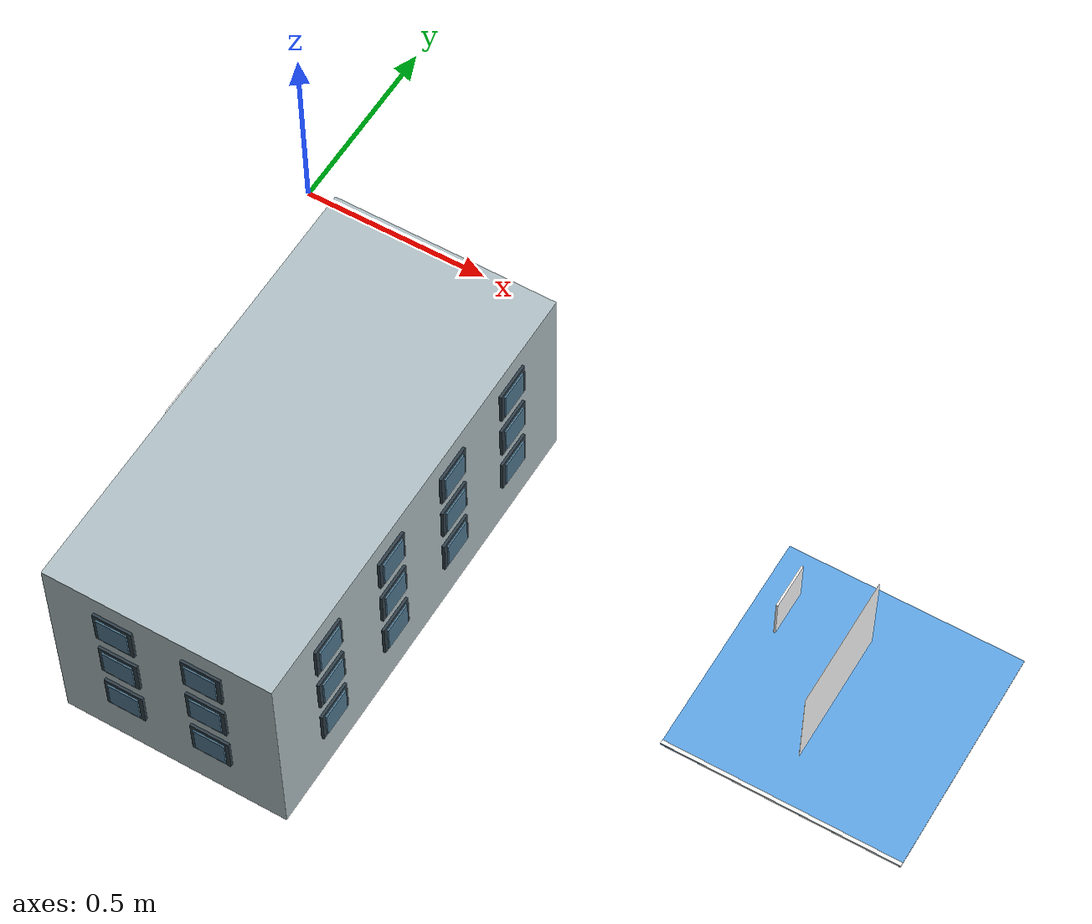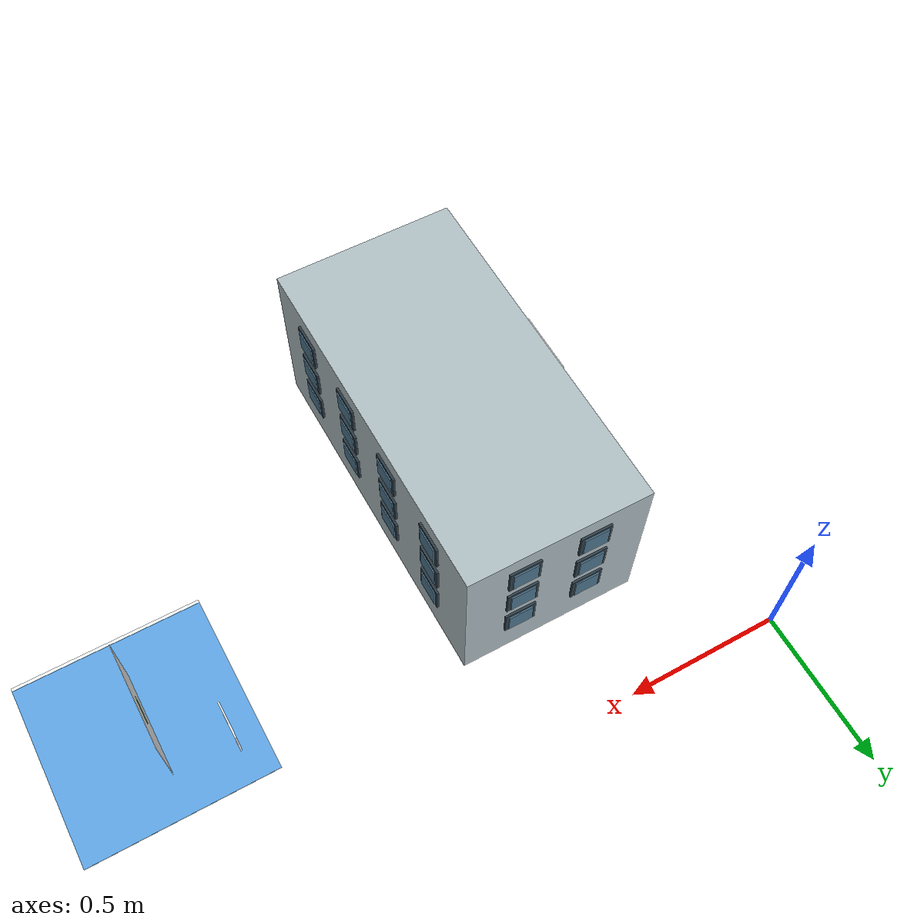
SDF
<sdf version="1.6">
 <world name="sq_community_4p2">
  <include><uri>model://sun</uri></include>
  <model name="sq4_car_bay_3">
   <static>true</static>
   <pose>1.8000 -0.6000 0.0000 0 0 0.00000</pose>
   <link name="surface">
    <visual name="surface_vis">
     <pose>0.0000 0.0000 0.0020 0 0 0.00000</pose>
     <geometry><box><size>0.6000 0.6000 0.0040</size></box></geometry>
     <material>
      <ambient>0.3700 0.6500 0.9000 1.0000</ambient>
      <diffuse>0.3700 0.6500 0.9000 1.0000</diffuse>
     </material>
    </visual>
   </link>
  </model>
  <model name="sq4_car_bay_line_3">
   <static>true</static>
   <pose>1.8000 -0.8950 0.0000 0 0 0.00000</pose>
   <link name="surface">
    <visual name="surface_vis">
     <pose>0.0000 0.0000 0.0030 0 0 0.00000</pose>
     <geometry><box><size>0.6000 0.0100 0.0060</size></box></geometry>
     <material>
      <ambient>0.9600 0.9700 0.9700 1.0000</ambient>
      <diffuse>0.9600 0.9700 0.9700 1.0000</diffuse>
     </material>
    </visual>
   </link>
  </model>
  <model name="sq4_building_C">
   <static>true</static>
   <pose>0.6000 -0.9000 0.0000 0 0 0.00000</pose>
   <link name="structure">
    <visual name="structure_vis">
     <pose>0.0000 0.0000 0.2750 0 0 0.00000</pose>
     <geometry><box><size>0.5800 1.1600 0.5500</size></box></geometry>
     <material>
      <ambient>0.6900 0.7500 0.7700 1.0000</ambient>
      <diffuse>0.6900 0.7500 0.7700 1.0000</diffuse>
     </material>
    </visual>
    <collision name="structure_col">
     <pose>0.0000 0.0000 0.2750 0 0 0.00000</pose>
     <geometry><box><size>0.5800 1.1600 0.5500</size></box></geometry>
    </collision>
   </link>
   <link name="nameplate">
    <visual name="nameplate_vis">
     <pose>-0.2960 0.0000 0.5150 0 0 0.00000</pose>
     <geometry><box><size>0.0050 0.2000 0.0450</size></box></geometry>
     <material>
      <script>
       <uri>model://sq_textures/materials/scripts</uri>
       <uri>model://sq_textures/materials/textures</uri>
       <name>SQ_bldg_C</name>
      </script>
      <ambient>1 1 1 1</ambient>
      <diffuse>1 1 1 1</diffuse>
     </material>
    </visual>
   </link>
   <link name="entry_door">
    <visual name="entry_door_vis">
     <pose>-0.2960 0.0000 0.0630 0 0 0.00000</pose>
     <geometry><box><size>0.0060 0.1150 0.1050</size></box></geometry>
     <material>
      <ambient>0.1600 0.2300 0.2800 1.0000</ambient>
      <diffuse>0.1600 0.2300 0.2800 1.0000</diffuse>
     </material>
    </visual>
   </link>
   <link name="window_f1_c1_frame">
    <visual name="window_f1_c1_frame_vis">
     <pose>-0.2950 -0.3783 0.1800 0 0 0.00000</pose>
     <geometry><box><size>0.0070 0.1000 0.0930</size></box></geometry>
     <material>
      <ambient>0.1800 0.2400 0.2800 1.0000</ambient>
      <diffuse>0.1800 0.2400 0.2800 1.0000</diffuse>
     </material>
    </visual>
   </link>
   <link name="window_f1_c1_glass">
    <visual name="window_f1_c1_glass_vis">
     <pose>-0.2990 -0.3783 0.1800 0 0 0.00000</pose>
     <geometry><box><size>0.0070 0.0780 0.0720</size></box></geometry>
     <material>
      <ambient>0.3100 0.4700 0.5700 1.0000</ambient>
      <diffuse>0.3100 0.4700 0.5700 1.0000</diffuse>
     </material>
    </visual>
   </link>
   <link name="window_f1_c2_frame">
    <visual name="window_f1_c2_frame_vis">
     <pose>-0.2950 -0.1261 0.1800 0 0 0.00000</pose>
     <geometry><box><size>0.0070 0.1000 0.0930</size></box></geometry>
     <material>
      <ambient>0.1800 0.2400 0.2800 1.0000</ambient>
      <diffuse>0.1800 0.2400 0.2800 1.0000</diffuse>
     </material>
    </visual>
   </link>
   <link name="window_f1_c2_glass">
    <visual name="window_f1_c2_glass_vis">
     <pose>-0.2990 -0.1261 0.1800 0 0 0.00000</pose>
     <geometry><box><size>0.0070 0.0780 0.0720</size></box></geometry>
     <material>
      <ambient>0.3100 0.4700 0.5700 1.0000</ambient>
      <diffuse>0.3100 0.4700 0.5700 1.0000</diffuse>
     </material>
    </visual>
   </link>
   <link name="window_f1_c3_frame">
    <visual name="window_f1_c3_frame_vis">
     <pose>-0.2950 0.1261 0.1800 0 0 0.00000</pose>
     <geometry><box><size>0.0070 0.1000 0.0930</size></box></geometry>
     <material>
      <ambient>0.1800 0.2400 0.2800 1.0000</ambient>
      <diffuse>0.1800 0.2400 0.2800 1.0000</diffuse>
     </material>
    </visual>
   </link>
   <link name="window_f1_c3_glass">
    <visual name="window_f1_c3_glass_vis">
     <pose>-0.2990 0.1261 0.1800 0 0 0.00000</pose>
     <geometry><box><size>0.0070 0.0780 0.0720</size></box></geometry>
     <material>
      <ambient>0.3100 0.4700 0.5700 1.0000</ambient>
      <diffuse>0.3100 0.4700 0.5700 1.0000</diffuse>
     </material>
    </visual>
   </link>
   <link name="window_f1_c4_frame">
    <visual name="window_f1_c4_frame_vis">
     <pose>-0.2950 0.3783 0.1800 0 0 0.00000</pose>
     <geometry><box><size>0.0070 0.1000 0.0930</size></box></geometry>
     <material>
      <ambient>0.1800 0.2400 0.2800 1.0000</ambient>
      <diffuse>0.1800 0.2400 0.2800 1.0000</diffuse>
     </material>
    </visual>
   </link>
   <link name="window_f1_c4_glass">
    <visual name="window_f1_c4_glass_vis">
     <pose>-0.2990 0.3783 0.1800 0 0 0.00000</pose>
     <geometry><box><size>0.0070 0.0780 0.0720</size></box></geometry>
     <material>
      <ambient>0.3100 0.4700 0.5700 1.0000</ambient>
      <diffuse>0.3100 0.4700 0.5700 1.0000</diffuse>
     </material>
    </visual>
   </link>
   <link name="window_f2_c1_frame">
    <visual name="window_f2_c1_frame_vis">
     <pose>-0.2950 -0.3783 0.3150 0 0 0.00000</pose>
     <geometry><box><size>0.0070 0.1000 0.0930</size></box></geometry>
     <material>
      <ambient>0.1800 0.2400 0.2800 1.0000</ambient>
      <diffuse>0.1800 0.2400 0.2800 1.0000</diffuse>
     </material>
    </visual>
   </link>
   <link name="window_f2_c1_glass">
    <visual name="window_f2_c1_glass_vis">
     <pose>-0.2990 -0.3783 0.3150 0 0 0.00000</pose>
     <geometry><box><size>0.0070 0.0780 0.0720</size></box></geometry>
     <material>
      <ambient>0.3100 0.4700 0.5700 1.0000</ambient>
      <diffuse>0.3100 0.4700 0.5700 1.0000</diffuse>
     </material>
    </visual>
   </link>
   <link name="window_f2_c2_frame">
    <visual name="window_f2_c2_frame_vis">
     <pose>-0.2950 -0.1261 0.3150 0 0 0.00000</pose>
     <geometry><box><size>0.0070 0.1000 0.0930</size></box></geometry>
     <material>
      <ambient>0.1800 0.2400 0.2800 1.0000</ambient>
      <diffuse>0.1800 0.2400 0.2800 1.0000</diffuse>
     </material>
    </visual>
   </link>
   <link name="window_f2_c2_glass">
    <visual name="window_f2_c2_glass_vis">
     <pose>-0.2990 -0.1261 0.3150 0 0 0.00000</pose>
     <geometry><box><size>0.0070 0.0780 0.0720</size></box></geometry>
     <material>
      <script>
       <uri>model://sq_textures/materials/scripts</uri>
       <uri>model://sq_textures/materials/textures</uri>
       <name>SQ_win_fire</name>
      </script>
      <ambient>1 1 1 1</ambient>
      <diffuse>1 1 1 1</diffuse>
     </material>
    </visual>
   </link>
   <link name="window_f2_c3_frame">
    <visual name="window_f2_c3_frame_vis">
     <pose>-0.2950 0.1261 0.3150 0 0 0.00000</pose>
     <geometry><box><size>0.0070 0.1000 0.0930</size></box></geometry>
     <material>
      <ambient>0.1800 0.2400 0.2800 1.0000</ambient>
      <diffuse>0.1800 0.2400 0.2800 1.0000</diffuse>
     </material>
    </visual>
   </link>
   <link name="window_f2_c3_glass">
    <visual name="window_f2_c3_glass_vis">
     <pose>-0.2990 0.1261 0.3150 0 0 0.00000</pose>
     <geometry><box><size>0.0070 0.0780 0.0720</size></box></geometry>
     <material>
      <ambient>0.3100 0.4700 0.5700 1.0000</ambient>
      <diffuse>0.3100 0.4700 0.5700 1.0000</diffuse>
     </material>
    </visual>
   </link>
   <link name="window_f2_c4_frame">
    <visual name="window_f2_c4_frame_vis">
     <pose>-0.2950 0.3783 0.3150 0 0 0.00000</pose>
     <geometry><box><size>0.0070 0.1000 0.0930</size></box></geometry>
     <material>
      <ambient>0.1800 0.2400 0.2800 1.0000</ambient>
      <diffuse>0.1800 0.2400 0.2800 1.0000</diffuse>
     </material>
    </visual>
   </link>
   <link name="window_f2_c4_glass">
    <visual name="window_f2_c4_glass_vis">
     <pose>-0.2990 0.3783 0.3150 0 0 0.00000</pose>
     <geometry><box><size>0.0070 0.0780 0.0720</size></box></geometry>
     <material>
      <ambient>0.3100 0.4700 0.5700 1.0000</ambient>
      <diffuse>0.3100 0.4700 0.5700 1.0000</diffuse>
     </material>
    </visual>
   </link>
   <link name="window_f3_c1_frame">
    <visual name="window_f3_c1_frame_vis">
     <pose>-0.2950 -0.3783 0.4500 0 0 0.00000</pose>
     <geometry><box><size>0.0070 0.1000 0.0930</size></box></geometry>
     <material>
      <ambient>0.1800 0.2400 0.2800 1.0000</ambient>
      <diffuse>0.1800 0.2400 0.2800 1.0000</diffuse>
     </material>
    </visual>
   </link>
   <link name="window_f3_c1_glass">
    <visual name="window_f3_c1_glass_vis">
     <pose>-0.2990 -0.3783 0.4500 0 0 0.00000</pose>
     <geometry><box><size>0.0070 0.0780 0.0720</size></box></geometry>
     <material>
      <ambient>0.3100 0.4700 0.5700 1.0000</ambient>
      <diffuse>0.3100 0.4700 0.5700 1.0000</diffuse>
     </material>
    </visual>
   </link>
   <link name="window_f3_c2_frame">
    <visual name="window_f3_c2_frame_vis">
     <pose>-0.2950 -0.1261 0.4500 0 0 0.00000</pose>
     <geometry><box><size>0.0070 0.1000 0.0930</size></box></geometry>
     <material>
      <ambient>0.1800 0.2400 0.2800 1.0000</ambient>
      <diffuse>0.1800 0.2400 0.2800 1.0000</diffuse>
     </material>
    </visual>
   </link>
   <link name="window_f3_c2_glass">
    <visual name="window_f3_c2_glass_vis">
     <pose>-0.2990 -0.1261 0.4500 0 0 0.00000</pose>
     <geometry><box><size>0.0070 0.0780 0.0720</size></box></geometry>
     <material>
      <ambient>0.3100 0.4700 0.5700 1.0000</ambient>
      <diffuse>0.3100 0.4700 0.5700 1.0000</diffuse>
     </material>
    </visual>
   </link>
   <link name="window_f3_c3_frame">
    <visual name="window_f3_c3_frame_vis">
     <pose>-0.2950 0.1261 0.4500 0 0 0.00000</pose>
     <geometry><box><size>0.0070 0.1000 0.0930</size></box></geometry>
     <material>
      <ambient>0.1800 0.2400 0.2800 1.0000</ambient>
      <diffuse>0.1800 0.2400 0.2800 1.0000</diffuse>
     </material>
    </visual>
   </link>
   <link name="window_f3_c3_glass">
    <visual name="window_f3_c3_glass_vis">
     <pose>-0.2990 0.1261 0.4500 0 0 0.00000</pose>
     <geometry><box><size>0.0070 0.0780 0.0720</size></box></geometry>
     <material>
      <ambient>0.3100 0.4700 0.5700 1.0000</ambient>
      <diffuse>0.3100 0.4700 0.5700 1.0000</diffuse>
     </material>
    </visual>
   </link>
   <link name="window_f3_c4_frame">
    <visual name="window_f3_c4_frame_vis">
     <pose>-0.2950 0.3783 0.4500 0 0 0.00000</pose>
     <geometry><box><size>0.0070 0.1000 0.0930</size></box></geometry>
     <material>
      <ambient>0.1800 0.2400 0.2800 1.0000</ambient>
      <diffuse>0.1800 0.2400 0.2800 1.0000</diffuse>
     </material>
    </visual>
   </link>
   <link name="window_f3_c4_glass">
    <visual name="window_f3_c4_glass_vis">
     <pose>-0.2990 0.3783 0.4500 0 0 0.00000</pose>
     <geometry><box><size>0.0070 0.0780 0.0720</size></box></geometry>
     <material>
      <script>
       <uri>model://sq_textures/materials/scripts</uri>
       <uri>model://sq_textures/materials/textures</uri>
       <name>SQ_win_fire</name>
      </script>
      <ambient>1 1 1 1</ambient>
      <diffuse>1 1 1 1</diffuse>
     </material>
    </visual>
   </link>
   <link name="side_north_f1_c1_frame">
    <visual name="side_north_f1_c1_frame_vis">
     <pose>-0.1115 0.5850 0.1800 0 0 0.00000</pose>
     <geometry><box><size>0.1000 0.0070 0.0930</size></box></geometry>
     <material>
      <ambient>0.1800 0.2400 0.2800 1.0000</ambient>
      <diffuse>0.1800 0.2400 0.2800 1.0000</diffuse>
     </material>
    </visual>
   </link>
   <link name="side_north_f1_c1_glass">
    <visual name="side_north_f1_c1_glass_vis">
     <pose>-0.1115 0.5890 0.1800 0 0 0.00000</pose>
     <geometry><box><size>0.0780 0.0070 0.0720</size></box></geometry>
     <material>
      <ambient>0.3100 0.4700 0.5700 1.0000</ambient>
      <diffuse>0.3100 0.4700 0.5700 1.0000</diffuse>
     </material>
    </visual>
   </link>
   <link name="side_north_f1_c2_frame">
    <visual name="side_north_f1_c2_frame_vis">
     <pose>0.1115 0.5850 0.1800 0 0 0.00000</pose>
     <geometry><box><size>0.1000 0.0070 0.0930</size></box></geometry>
     <material>
      <ambient>0.1800 0.2400 0.2800 1.0000</ambient>
      <diffuse>0.1800 0.2400 0.2800 1.0000</diffuse>
     </material>
    </visual>
   </link>
   <link name="side_north_f1_c2_glass">
    <visual name="side_north_f1_c2_glass_vis">
     <pose>0.1115 0.5890 0.1800 0 0 0.00000</pose>
     <geometry><box><size>0.0780 0.0070 0.0720</size></box></geometry>
     <material>
      <ambient>0.3100 0.4700 0.5700 1.0000</ambient>
      <diffuse>0.3100 0.4700 0.5700 1.0000</diffuse>
     </material>
    </visual>
   </link>
   <link name="side_north_f2_c1_frame">
    <visual name="side_north_f2_c1_frame_vis">
     <pose>-0.1115 0.5850 0.3150 0 0 0.00000</pose>
     <geometry><box><size>0.1000 0.0070 0.0930</size></box></geometry>
     <material>
      <ambient>0.1800 0.2400 0.2800 1.0000</ambient>
      <diffuse>0.1800 0.2400 0.2800 1.0000</diffuse>
     </material>
    </visual>
   </link>
   <link name="side_north_f2_c1_glass">
    <visual name="side_north_f2_c1_glass_vis">
     <pose>-0.1115 0.5890 0.3150 0 0 0.00000</pose>
     <geometry><box><size>0.0780 0.0070 0.0720</size></box></geometry>
     <material>
      <ambient>0.3100 0.4700 0.5700 1.0000</ambient>
      <diffuse>0.3100 0.4700 0.5700 1.0000</diffuse>
     </material>
    </visual>
   </link>
   <link name="side_north_f2_c2_frame">
    <visual name="side_north_f2_c2_frame_vis">
     <pose>0.1115 0.5850 0.3150 0 0 0.00000</pose>
     <geometry><box><size>0.1000 0.0070 0.0930</size></box></geometry>
     <material>
      <ambient>0.1800 0.2400 0.2800 1.0000</ambient>
      <diffuse>0.1800 0.2400 0.2800 1.0000</diffuse>
     </material>
    </visual>
   </link>
   <link name="side_north_f2_c2_glass">
    <visual name="side_north_f2_c2_glass_vis">
     <pose>0.1115 0.5890 0.3150 0 0 0.00000</pose>
     <geometry><box><size>0.0780 0.0070 0.0720</size></box></geometry>
     <material>
      <ambient>0.3100 0.4700 0.5700 1.0000</ambient>
      <diffuse>0.3100 0.4700 0.5700 1.0000</diffuse>
     </material>
    </visual>
   </link>
   <link name="side_north_f3_c1_frame">
    <visual name="side_north_f3_c1_frame_vis">
     <pose>-0.1115 0.5850 0.4500 0 0 0.00000</pose>
     <geometry><box><size>0.1000 0.0070 0.0930</size></box></geometry>
     <material>
      <ambient>0.1800 0.2400 0.2800 1.0000</ambient>
      <diffuse>0.1800 0.2400 0.2800 1.0000</diffuse>
     </material>
    </visual>
   </link>
   <link name="side_north_f3_c1_glass">
    <visual name="side_north_f3_c1_glass_vis">
     <pose>-0.1115 0.5890 0.4500 0 0 0.00000</pose>
     <geometry><box><size>0.0780 0.0070 0.0720</size></box></geometry>
     <material>
      <ambient>0.3100 0.4700 0.5700 1.0000</ambient>
      <diffuse>0.3100 0.4700 0.5700 1.0000</diffuse>
     </material>
    </visual>
   </link>
   <link name="side_north_f3_c2_frame">
    <visual name="side_north_f3_c2_frame_vis">
     <pose>0.1115 0.5850 0.4500 0 0 0.00000</pose>
     <geometry><box><size>0.1000 0.0070 0.0930</size></box></geometry>
     <material>
      <ambient>0.1800 0.2400 0.2800 1.0000</ambient>
      <diffuse>0.1800 0.2400 0.2800 1.0000</diffuse>
     </material>
    </visual>
   </link>
   <link name="side_north_f3_c2_glass">
    <visual name="side_north_f3_c2_glass_vis">
     <pose>0.1115 0.5890 0.4500 0 0 0.00000</pose>
     <geometry><box><size>0.0780 0.0070 0.0720</size></box></geometry>
     <material>
      <ambient>0.3100 0.4700 0.5700 1.0000</ambient>
      <diffuse>0.3100 0.4700 0.5700 1.0000</diffuse>
     </material>
    </visual>
   </link>
   <link name="side_south_f1_c1_frame">
    <visual name="side_south_f1_c1_frame_vis">
     <pose>-0.1115 -0.5850 0.1800 0 0 0.00000</pose>
     <geometry><box><size>0.1000 0.0070 0.0930</size></box></geometry>
     <material>
      <ambient>0.1800 0.2400 0.2800 1.0000</ambient>
      <diffuse>0.1800 0.2400 0.2800 1.0000</diffuse>
     </material>
    </visual>
   </link>
   <link name="side_south_f1_c1_glass">
    <visual name="side_south_f1_c1_glass_vis">
     <pose>-0.1115 -0.5890 0.1800 0 0 0.00000</pose>
     <geometry><box><size>0.0780 0.0070 0.0720</size></box></geometry>
     <material>
      <ambient>0.3100 0.4700 0.5700 1.0000</ambient>
      <diffuse>0.3100 0.4700 0.5700 1.0000</diffuse>
     </material>
    </visual>
   </link>
   <link name="side_south_f1_c2_frame">
    <visual name="side_south_f1_c2_frame_vis">
     <pose>0.1115 -0.5850 0.1800 0 0 0.00000</pose>
     <geometry><box><size>0.1000 0.0070 0.0930</size></box></geometry>
     <material>
      <ambient>0.1800 0.2400 0.2800 1.0000</ambient>
      <diffuse>0.1800 0.2400 0.2800 1.0000</diffuse>
     </material>
    </visual>
   </link>
   <link name="side_south_f1_c2_glass">
    <visual name="side_south_f1_c2_glass_vis">
     <pose>0.1115 -0.5890 0.1800 0 0 0.00000</pose>
     <geometry><box><size>0.0780 0.0070 0.0720</size></box></geometry>
     <material>
      <ambient>0.3100 0.4700 0.5700 1.0000</ambient>
      <diffuse>0.3100 0.4700 0.5700 1.0000</diffuse>
     </material>
    </visual>
   </link>
   <link name="side_south_f2_c1_frame">
    <visual name="side_south_f2_c1_frame_vis">
     <pose>-0.1115 -0.5850 0.3150 0 0 0.00000</pose>
     <geometry><box><size>0.1000 0.0070 0.0930</size></box></geometry>
     <material>
      <ambient>0.1800 0.2400 0.2800 1.0000</ambient>
      <diffuse>0.1800 0.2400 0.2800 1.0000</diffuse>
     </material>
    </visual>
   </link>
   <link name="side_south_f2_c1_glass">
    <visual name="side_south_f2_c1_glass_vis">
     <pose>-0.1115 -0.5890 0.3150 0 0 0.00000</pose>
     <geometry><box><size>0.0780 0.0070 0.0720</size></box></geometry>
     <material>
      <ambient>0.3100 0.4700 0.5700 1.0000</ambient>
      <diffuse>0.3100 0.4700 0.5700 1.0000</diffuse>
     </material>
    </visual>
   </link>
   <link name="side_south_f2_c2_frame">
    <visual name="side_south_f2_c2_frame_vis">
     <pose>0.1115 -0.5850 0.3150 0 0 0.00000</pose>
     <geometry><box><size>0.1000 0.0070 0.0930</size></box></geometry>
     <material>
      <ambient>0.1800 0.2400 0.2800 1.0000</ambient>
      <diffuse>0.1800 0.2400 0.2800 1.0000</diffuse>
     </material>
    </visual>
   </link>
   <link name="side_south_f2_c2_glass">
    <visual name="side_south_f2_c2_glass_vis">
     <pose>0.1115 -0.5890 0.3150 0 0 0.00000</pose>
     <geometry><box><size>0.0780 0.0070 0.0720</size></box></geometry>
     <material>
      <ambient>0.3100 0.4700 0.5700 1.0000</ambient>
      <diffuse>0.3100 0.4700 0.5700 1.0000</diffuse>
     </material>
    </visual>
   </link>
   <link name="side_south_f3_c1_frame">
    <visual name="side_south_f3_c1_frame_vis">
     <pose>-0.1115 -0.5850 0.4500 0 0 0.00000</pose>
     <geometry><box><size>0.1000 0.0070 0.0930</size></box></geometry>
     <material>
      <ambient>0.1800 0.2400 0.2800 1.0000</ambient>
      <diffuse>0.1800 0.2400 0.2800 1.0000</diffuse>
     </material>
    </visual>
   </link>
   <link name="side_south_f3_c1_glass">
    <visual name="side_south_f3_c1_glass_vis">
     <pose>-0.1115 -0.5890 0.4500 0 0 0.00000</pose>
     <geometry><box><size>0.0780 0.0070 0.0720</size></box></geometry>
     <material>
      <ambient>0.3100 0.4700 0.5700 1.0000</ambient>
      <diffuse>0.3100 0.4700 0.5700 1.0000</diffuse>
     </material>
    </visual>
   </link>
   <link name="side_south_f3_c2_frame">
    <visual name="side_south_f3_c2_frame_vis">
     <pose>0.1115 -0.5850 0.4500 0 0 0.00000</pose>
     <geometry><box><size>0.1000 0.0070 0.0930</size></box></geometry>
     <material>
      <ambient>0.1800 0.2400 0.2800 1.0000</ambient>
      <diffuse>0.1800 0.2400 0.2800 1.0000</diffuse>
     </material>
    </visual>
   </link>
   <link name="side_south_f3_c2_glass">
    <visual name="side_south_f3_c2_glass_vis">
     <pose>0.1115 -0.5890 0.4500 0 0 0.00000</pose>
     <geometry><box><size>0.0780 0.0070 0.0720</size></box></geometry>
     <material>
      <ambient>0.3100 0.4700 0.5700 1.0000</ambient>
      <diffuse>0.3100 0.4700 0.5700 1.0000</diffuse>
     </material>
    </visual>
   </link>
   <link name="rear_f1_c1_frame">
    <visual name="rear_f1_c1_frame_vis">
     <pose>0.2950 -0.3783 0.1800 0 0 0.00000</pose>
     <geometry><box><size>0.0070 0.1000 0.0930</size></box></geometry>
     <material>
      <ambient>0.1800 0.2400 0.2800 1.0000</ambient>
      <diffuse>0.1800 0.2400 0.2800 1.0000</diffuse>
     </material>
    </visual>
   </link>
   <link name="rear_f1_c1_glass">
    <visual name="rear_f1_c1_glass_vis">
     <pose>0.2990 -0.3783 0.1800 0 0 0.00000</pose>
     <geometry><box><size>0.0070 0.0780 0.0720</size></box></geometry>
     <material>
      <ambient>0.3100 0.4700 0.5700 1.0000</ambient>
      <diffuse>0.3100 0.4700 0.5700 1.0000</diffuse>
     </material>
    </visual>
   </link>
   <link name="rear_f1_c2_frame">
    <visual name="rear_f1_c2_frame_vis">
     <pose>0.2950 -0.1261 0.1800 0 0 0.00000</pose>
     <geometry><box><size>0.0070 0.1000 0.0930</size></box></geometry>
     <material>
      <ambient>0.1800 0.2400 0.2800 1.0000</ambient>
      <diffuse>0.1800 0.2400 0.2800 1.0000</diffuse>
     </material>
    </visual>
   </link>
   <link name="rear_f1_c2_glass">
    <visual name="rear_f1_c2_glass_vis">
     <pose>0.2990 -0.1261 0.1800 0 0 0.00000</pose>
     <geometry><box><size>0.0070 0.0780 0.0720</size></box></geometry>
     <material>
      <ambient>0.3100 0.4700 0.5700 1.0000</ambient>
      <diffuse>0.3100 0.4700 0.5700 1.0000</diffuse>
     </material>
    </visual>
   </link>
   <link name="rear_f1_c3_frame">
    <visual name="rear_f1_c3_frame_vis">
     <pose>0.2950 0.1261 0.1800 0 0 0.00000</pose>
     <geometry><box><size>0.0070 0.1000 0.0930</size></box></geometry>
     <material>
      <ambient>0.1800 0.2400 0.2800 1.0000</ambient>
      <diffuse>0.1800 0.2400 0.2800 1.0000</diffuse>
     </material>
    </visual>
   </link>
   <link name="rear_f1_c3_glass">
    <visual name="rear_f1_c3_glass_vis">
     <pose>0.2990 0.1261 0.1800 0 0 0.00000</pose>
     <geometry><box><size>0.0070 0.0780 0.0720</size></box></geometry>
     <material>
      <ambient>0.3100 0.4700 0.5700 1.0000</ambient>
      <diffuse>0.3100 0.4700 0.5700 1.0000</diffuse>
     </material>
    </visual>
   </link>
   <link name="rear_f1_c4_frame">
    <visual name="rear_f1_c4_frame_vis">
     <pose>0.2950 0.3783 0.1800 0 0 0.00000</pose>
     <geometry><box><size>0.0070 0.1000 0.0930</size></box></geometry>
     <material>
      <ambient>0.1800 0.2400 0.2800 1.0000</ambient>
      <diffuse>0.1800 0.2400 0.2800 1.0000</diffuse>
     </material>
    </visual>
   </link>
   <link name="rear_f1_c4_glass">
    <visual name="rear_f1_c4_glass_vis">
     <pose>0.2990 0.3783 0.1800 0 0 0.00000</pose>
     <geometry><box><size>0.0070 0.0780 0.0720</size></box></geometry>
     <material>
      <ambient>0.3100 0.4700 0.5700 1.0000</ambient>
      <diffuse>0.3100 0.4700 0.5700 1.0000</diffuse>
     </material>
    </visual>
   </link>
   <link name="rear_f2_c1_frame">
    <visual name="rear_f2_c1_frame_vis">
     <pose>0.2950 -0.3783 0.3150 0 0 0.00000</pose>
     <geometry><box><size>0.0070 0.1000 0.0930</size></box></geometry>
     <material>
      <ambient>0.1800 0.2400 0.2800 1.0000</ambient>
      <diffuse>0.1800 0.2400 0.2800 1.0000</diffuse>
     </material>
    </visual>
   </link>
   <link name="rear_f2_c1_glass">
    <visual name="rear_f2_c1_glass_vis">
     <pose>0.2990 -0.3783 0.3150 0 0 0.00000</pose>
     <geometry><box><size>0.0070 0.0780 0.0720</size></box></geometry>
     <material>
      <ambient>0.3100 0.4700 0.5700 1.0000</ambient>
      <diffuse>0.3100 0.4700 0.5700 1.0000</diffuse>
     </material>
    </visual>
   </link>
   <link name="rear_f2_c2_frame">
    <visual name="rear_f2_c2_frame_vis">
     <pose>0.2950 -0.1261 0.3150 0 0 0.00000</pose>
     <geometry><box><size>0.0070 0.1000 0.0930</size></box></geometry>
     <material>
      <ambient>0.1800 0.2400 0.2800 1.0000</ambient>
      <diffuse>0.1800 0.2400 0.2800 1.0000</diffuse>
     </material>
    </visual>
   </link>
   <link name="rear_f2_c2_glass">
    <visual name="rear_f2_c2_glass_vis">
     <pose>0.2990 -0.1261 0.3150 0 0 0.00000</pose>
     <geometry><box><size>0.0070 0.0780 0.0720</size></box></geometry>
     <material>
      <ambient>0.3100 0.4700 0.5700 1.0000</ambient>
      <diffuse>0.3100 0.4700 0.5700 1.0000</diffuse>
     </material>
    </visual>
   </link>
   <link name="rear_f2_c3_frame">
    <visual name="rear_f2_c3_frame_vis">
     <pose>0.2950 0.1261 0.3150 0 0 0.00000</pose>
     <geometry><box><size>0.0070 0.1000 0.0930</size></box></geometry>
     <material>
      <ambient>0.1800 0.2400 0.2800 1.0000</ambient>
      <diffuse>0.1800 0.2400 0.2800 1.0000</diffuse>
     </material>
    </visual>
   </link>
   <link name="rear_f2_c3_glass">
    <visual name="rear_f2_c3_glass_vis">
     <pose>0.2990 0.1261 0.3150 0 0 0.00000</pose>
     <geometry><box><size>0.0070 0.0780 0.0720</size></box></geometry>
     <material>
      <ambient>0.3100 0.4700 0.5700 1.0000</ambient>
      <diffuse>0.3100 0.4700 0.5700 1.0000</diffuse>
     </material>
    </visual>
   </link>
   <link name="rear_f2_c4_frame">
    <visual name="rear_f2_c4_frame_vis">
     <pose>0.2950 0.3783 0.3150 0 0 0.00000</pose>
     <geometry><box><size>0.0070 0.1000 0.0930</size></box></geometry>
     <material>
      <ambient>0.1800 0.2400 0.2800 1.0000</ambient>
      <diffuse>0.1800 0.2400 0.2800 1.0000</diffuse>
     </material>
    </visual>
   </link>
   <link name="rear_f2_c4_glass">
    <visual name="rear_f2_c4_glass_vis">
     <pose>0.2990 0.3783 0.3150 0 0 0.00000</pose>
     <geometry><box><size>0.0070 0.0780 0.0720</size></box></geometry>
     <material>
      <ambient>0.3100 0.4700 0.5700 1.0000</ambient>
      <diffuse>0.3100 0.4700 0.5700 1.0000</diffuse>
     </material>
    </visual>
   </link>
   <link name="rear_f3_c1_frame">
    <visual name="rear_f3_c1_frame_vis">
     <pose>0.2950 -0.3783 0.4500 0 0 0.00000</pose>
     <geometry><box><size>0.0070 0.1000 0.0930</size></box></geometry>
     <material>
      <ambient>0.1800 0.2400 0.2800 1.0000</ambient>
      <diffuse>0.1800 0.2400 0.2800 1.0000</diffuse>
     </material>
    </visual>
   </link>
   <link name="rear_f3_c1_glass">
    <visual name="rear_f3_c1_glass_vis">
     <pose>0.2990 -0.3783 0.4500 0 0 0.00000</pose>
     <geometry><box><size>0.0070 0.0780 0.0720</size></box></geometry>
     <material>
      <ambient>0.3100 0.4700 0.5700 1.0000</ambient>
      <diffuse>0.3100 0.4700 0.5700 1.0000</diffuse>
     </material>
    </visual>
   </link>
   <link name="rear_f3_c2_frame">
    <visual name="rear_f3_c2_frame_vis">
     <pose>0.2950 -0.1261 0.4500 0 0 0.00000</pose>
     <geometry><box><size>0.0070 0.1000 0.0930</size></box></geometry>
     <material>
      <ambient>0.1800 0.2400 0.2800 1.0000</ambient>
      <diffuse>0.1800 0.2400 0.2800 1.0000</diffuse>
     </material>
    </visual>
   </link>
   <link name="rear_f3_c2_glass">
    <visual name="rear_f3_c2_glass_vis">
     <pose>0.2990 -0.1261 0.4500 0 0 0.00000</pose>
     <geometry><box><size>0.0070 0.0780 0.0720</size></box></geometry>
     <material>
      <ambient>0.3100 0.4700 0.5700 1.0000</ambient>
      <diffuse>0.3100 0.4700 0.5700 1.0000</diffuse>
     </material>
    </visual>
   </link>
   <link name="rear_f3_c3_frame">
    <visual name="rear_f3_c3_frame_vis">
     <pose>0.2950 0.1261 0.4500 0 0 0.00000</pose>
     <geometry><box><size>0.0070 0.1000 0.0930</size></box></geometry>
     <material>
      <ambient>0.1800 0.2400 0.2800 1.0000</ambient>
      <diffuse>0.1800 0.2400 0.2800 1.0000</diffuse>
     </material>
    </visual>
   </link>
   <link name="rear_f3_c3_glass">
    <visual name="rear_f3_c3_glass_vis">
     <pose>0.2990 0.1261 0.4500 0 0 0.00000</pose>
     <geometry><box><size>0.0070 0.0780 0.0720</size></box></geometry>
     <material>
      <ambient>0.3100 0.4700 0.5700 1.0000</ambient>
      <diffuse>0.3100 0.4700 0.5700 1.0000</diffuse>
     </material>
    </visual>
   </link>
   <link name="rear_f3_c4_frame">
    <visual name="rear_f3_c4_frame_vis">
     <pose>0.2950 0.3783 0.4500 0 0 0.00000</pose>
     <geometry><box><size>0.0070 0.1000 0.0930</size></box></geometry>
     <material>
      <ambient>0.1800 0.2400 0.2800 1.0000</ambient>
      <diffuse>0.1800 0.2400 0.2800 1.0000</diffuse>
     </material>
    </visual>
   </link>
   <link name="rear_f3_c4_glass">
    <visual name="rear_f3_c4_glass_vis">
     <pose>0.2990 0.3783 0.4500 0 0 0.00000</pose>
     <geometry><box><size>0.0070 0.0780 0.0720</size></box></geometry>
     <material>
      <ambient>0.3100 0.4700 0.5700 1.0000</ambient>
      <diffuse>0.3100 0.4700 0.5700 1.0000</diffuse>
     </material>
    </visual>
   </link>
  </model>
  <model name="sq4_car_3">
   <static>true</static>
   <pose>1.7800 -0.6000 0.0000 0 0 3.14159</pose>
   <link name="car_rear">
    <visual name="car_rear_vis">
     <pose>0.0000 0.0000 0.1250 0 0 0.00000</pose>
     <geometry><box><size>0.0005 0.3450 0.2500</size></box></geometry>
     <material>
      <script>
       <uri>model://sq_competition_assets/materials/scripts</uri>
       <uri>model://sq_competition_assets/materials/textures</uri>
       <name>SQ4_CarRear</name>
      </script>
      <ambient>1 1 1 1</ambient>
      <diffuse>1 1 1 1</diffuse>
     </material>
    </visual>
   </link>
   <link name="plate">
    <visual name="plate_vis">
     <pose>0.0004 0.0000 0.1250 0 0 0.00000</pose>
     <geometry><box><size>0.0001 0.0950 0.0300</size></box></geometry>
     <material>
      <script>
       <uri>model://sq_competition_assets/materials/scripts</uri>
       <uri>model://sq_competition_assets/materials/textures</uri>
       <name>SQ4_Plate_Green</name>
      </script>
      <ambient>1 1 1 1</ambient>
      <diffuse>1 1 1 1</diffuse>
     </material>
    </visual>
   </link>
  </model>
  <model name="sq4_sign_turn_right">
   <static>true</static>
   <pose>1.5800 -0.4600 0.0000 0 0 3.14159</pose>
   <link name="panel">
    <visual name="panel_vis">
     <pose>0.0000 0.0000 0.0600 0 0 0.00000</pose>
     <geometry><box><size>0.0050 0.1200 0.1200</size></box></geometry>
     <material>
      <script>
       <uri>model://sq_textures/materials/scripts</uri>
       <uri>model://sq_textures/materials/textures</uri>
       <name>SQ_sign_turn_right</name>
      </script>
      <ambient>1 1 1 1</ambient>
      <diffuse>1 1 1 1</diffuse>
     </material>
    </visual>
   </link>
  </model>
 </world>
</sdf>
